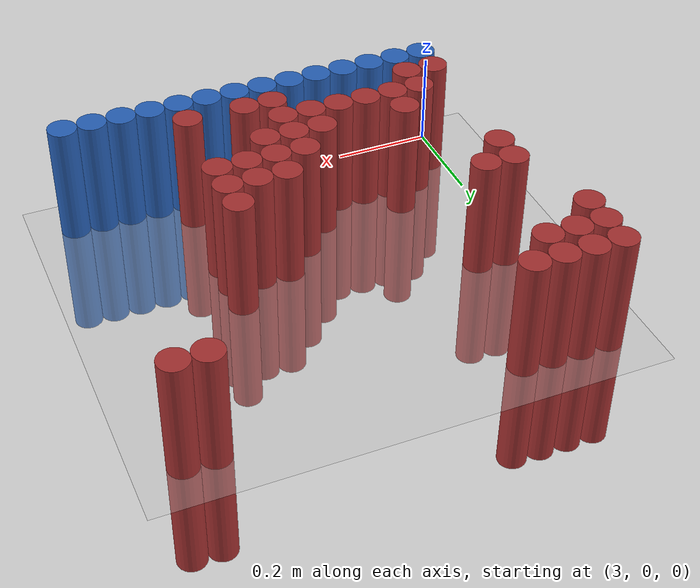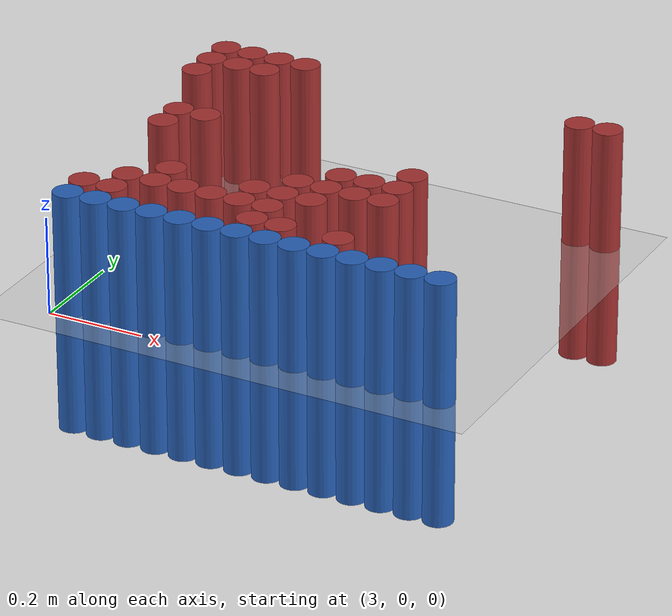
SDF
<sdf version="1.6">
 <world name="default">
  <model name="ground_plane">
   <static>1</static>
   <link name="link">
    <collision name="collision">
     <geometry><plane><normal>0 0 1</normal><size>100 100</size></plane></geometry>
     <surface><friction><ode><mu>100</mu><mu2>50</mu2></ode></friction></surface>
    </collision>
    <visual name="visual">
     <cast_shadows>0</cast_shadows>
     <geometry><plane><normal>0 0 1</normal><size>100 100</size></plane></geometry>
     <material>
      <script><uri>file://media/materials/scripts/gazebo.material</uri><name>Gazebo/Grey</name></script>
     </material>
    </visual>
   </link>
  </model>
  <model name="unit_cylinder_235">
   <static>1</static>
   <pose>2.970000 0.750000 0.000000 0.000000 0.000000 0.000000</pose>
   <link name="link">
    <inertial>
     <mass>1</mass>
     <inertia><ixx>0.145833</ixx><ixy>0</ixy><ixz>0</ixz><iyy>0.145833</iyy><iyz>0</iyz><izz>0.125</izz></inertia>
    </inertial>
    <collision name="collision">
     <geometry><cylinder><radius>0.030000</radius><length>0.5</length></cylinder></geometry>
    </collision>
    <visual name="visual">
     <geometry><cylinder><radius>0.030000</radius><length>0.5</length></cylinder></geometry>
     <material>
      <ambient>0.648000 0.192000 0.192000 1</ambient>
      <diffuse>0.648000 0.192000 0.192000 1</diffuse>
     </material>
     <material>
      <script><name>Gazebo/Grey</name><uri>file://media/materials/scripts/gazebo.material</uri></script>
     </material>
    </visual>
   </link>
  </model>
  <model name="unit_cylinder_236">
   <static>1</static>
   <pose>3.030000 0.750000 0.000000 0.000000 0.000000 0.000000</pose>
   <link name="link">
    <inertial>
     <mass>1</mass>
     <inertia><ixx>0.145833</ixx><ixy>0</ixy><ixz>0</ixz><iyy>0.145833</iyy><iyz>0</iyz><izz>0.125</izz></inertia>
    </inertial>
    <collision name="collision">
     <geometry><cylinder><radius>0.030000</radius><length>0.5</length></cylinder></geometry>
    </collision>
    <visual name="visual">
     <geometry><cylinder><radius>0.030000</radius><length>0.5</length></cylinder></geometry>
     <material>
      <ambient>0.648000 0.192000 0.192000 1</ambient>
      <diffuse>0.648000 0.192000 0.192000 1</diffuse>
     </material>
     <material>
      <script><name>Gazebo/Grey</name><uri>file://media/materials/scripts/gazebo.material</uri></script>
     </material>
    </visual>
   </link>
  </model>
  <model name="unit_cylinder_237">
   <static>1</static>
   <pose>3.090000 0.750000 0.000000 0.000000 0.000000 0.000000</pose>
   <link name="link">
    <inertial>
     <mass>1</mass>
     <inertia><ixx>0.145833</ixx><ixy>0</ixy><ixz>0</ixz><iyy>0.145833</iyy><iyz>0</iyz><izz>0.125</izz></inertia>
    </inertial>
    <collision name="collision">
     <geometry><cylinder><radius>0.030000</radius><length>0.5</length></cylinder></geometry>
    </collision>
    <visual name="visual">
     <geometry><cylinder><radius>0.030000</radius><length>0.5</length></cylinder></geometry>
     <material>
      <ambient>0.648000 0.192000 0.192000 1</ambient>
      <diffuse>0.648000 0.192000 0.192000 1</diffuse>
     </material>
     <material>
      <script><name>Gazebo/Grey</name><uri>file://media/materials/scripts/gazebo.material</uri></script>
     </material>
    </visual>
   </link>
  </model>
  <model name="unit_cylinder_238">
   <static>1</static>
   <pose>3.150000 0.750000 0.000000 0.000000 0.000000 0.000000</pose>
   <link name="link">
    <inertial>
     <mass>1</mass>
     <inertia><ixx>0.145833</ixx><ixy>0</ixy><ixz>0</ixz><iyy>0.145833</iyy><iyz>0</iyz><izz>0.125</izz></inertia>
    </inertial>
    <collision name="collision">
     <geometry><cylinder><radius>0.030000</radius><length>0.5</length></cylinder></geometry>
    </collision>
    <visual name="visual">
     <geometry><cylinder><radius>0.030000</radius><length>0.5</length></cylinder></geometry>
     <material>
      <ambient>0.648000 0.192000 0.192000 1</ambient>
      <diffuse>0.648000 0.192000 0.192000 1</diffuse>
     </material>
     <material>
      <script><name>Gazebo/Grey</name><uri>file://media/materials/scripts/gazebo.material</uri></script>
     </material>
    </visual>
   </link>
  </model>
  <model name="unit_cylinder_239">
   <static>1</static>
   <pose>3.750000 0.750000 0.000000 0.000000 0.000000 0.000000</pose>
   <link name="link">
    <inertial>
     <mass>1</mass>
     <inertia><ixx>0.145833</ixx><ixy>0</ixy><ixz>0</ixz><iyy>0.145833</iyy><iyz>0</iyz><izz>0.125</izz></inertia>
    </inertial>
    <collision name="collision">
     <geometry><cylinder><radius>0.030000</radius><length>0.5</length></cylinder></geometry>
    </collision>
    <visual name="visual">
     <geometry><cylinder><radius>0.030000</radius><length>0.5</length></cylinder></geometry>
     <material>
      <ambient>0.648000 0.192000 0.192000 1</ambient>
      <diffuse>0.648000 0.192000 0.192000 1</diffuse>
     </material>
     <material>
      <script><name>Gazebo/Grey</name><uri>file://media/materials/scripts/gazebo.material</uri></script>
     </material>
    </visual>
   </link>
  </model>
  <model name="unit_cylinder_240">
   <static>1</static>
   <pose>3.810000 0.750000 0.000000 0.000000 0.000000 0.000000</pose>
   <link name="link">
    <inertial>
     <mass>1</mass>
     <inertia><ixx>0.145833</ixx><ixy>0</ixy><ixz>0</ixz><iyy>0.145833</iyy><iyz>0</iyz><izz>0.125</izz></inertia>
    </inertial>
    <collision name="collision">
     <geometry><cylinder><radius>0.030000</radius><length>0.5</length></cylinder></geometry>
    </collision>
    <visual name="visual">
     <geometry><cylinder><radius>0.030000</radius><length>0.5</length></cylinder></geometry>
     <material>
      <ambient>0.648000 0.192000 0.192000 1</ambient>
      <diffuse>0.648000 0.192000 0.192000 1</diffuse>
     </material>
     <material>
      <script><name>Gazebo/Grey</name><uri>file://media/materials/scripts/gazebo.material</uri></script>
     </material>
    </visual>
   </link>
  </model>
  <model name="unit_cylinder_246">
   <static>1</static>
   <pose>2.970000 0.690000 0.000000 0.000000 0.000000 0.000000</pose>
   <link name="link">
    <inertial>
     <mass>1</mass>
     <inertia><ixx>0.145833</ixx><ixy>0</ixy><ixz>0</ixz><iyy>0.145833</iyy><iyz>0</iyz><izz>0.125</izz></inertia>
    </inertial>
    <collision name="collision">
     <geometry><cylinder><radius>0.030000</radius><length>0.5</length></cylinder></geometry>
    </collision>
    <visual name="visual">
     <geometry><cylinder><radius>0.030000</radius><length>0.5</length></cylinder></geometry>
     <material>
      <ambient>0.648000 0.192000 0.192000 1</ambient>
      <diffuse>0.648000 0.192000 0.192000 1</diffuse>
     </material>
     <material>
      <script><name>Gazebo/Grey</name><uri>file://media/materials/scripts/gazebo.material</uri></script>
     </material>
    </visual>
   </link>
  </model>
  <model name="unit_cylinder_247">
   <static>1</static>
   <pose>3.030000 0.690000 0.000000 0.000000 0.000000 0.000000</pose>
   <link name="link">
    <inertial>
     <mass>1</mass>
     <inertia><ixx>0.145833</ixx><ixy>0</ixy><ixz>0</ixz><iyy>0.145833</iyy><iyz>0</iyz><izz>0.125</izz></inertia>
    </inertial>
    <collision name="collision">
     <geometry><cylinder><radius>0.030000</radius><length>0.5</length></cylinder></geometry>
    </collision>
    <visual name="visual">
     <geometry><cylinder><radius>0.030000</radius><length>0.5</length></cylinder></geometry>
     <material>
      <ambient>0.648000 0.192000 0.192000 1</ambient>
      <diffuse>0.648000 0.192000 0.192000 1</diffuse>
     </material>
     <material>
      <script><name>Gazebo/Grey</name><uri>file://media/materials/scripts/gazebo.material</uri></script>
     </material>
    </visual>
   </link>
  </model>
  <model name="unit_cylinder_248">
   <static>1</static>
   <pose>3.090000 0.690000 0.000000 0.000000 0.000000 0.000000</pose>
   <link name="link">
    <inertial>
     <mass>1</mass>
     <inertia><ixx>0.145833</ixx><ixy>0</ixy><ixz>0</ixz><iyy>0.145833</iyy><iyz>0</iyz><izz>0.125</izz></inertia>
    </inertial>
    <collision name="collision">
     <geometry><cylinder><radius>0.030000</radius><length>0.5</length></cylinder></geometry>
    </collision>
    <visual name="visual">
     <geometry><cylinder><radius>0.030000</radius><length>0.5</length></cylinder></geometry>
     <material>
      <ambient>0.648000 0.192000 0.192000 1</ambient>
      <diffuse>0.648000 0.192000 0.192000 1</diffuse>
     </material>
     <material>
      <script><name>Gazebo/Grey</name><uri>file://media/materials/scripts/gazebo.material</uri></script>
     </material>
    </visual>
   </link>
  </model>
  <model name="unit_cylinder_251">
   <static>1</static>
   <pose>2.970000 0.630000 0.000000 0.000000 0.000000 0.000000</pose>
   <link name="link">
    <inertial>
     <mass>1</mass>
     <inertia><ixx>0.145833</ixx><ixy>0</ixy><ixz>0</ixz><iyy>0.145833</iyy><iyz>0</iyz><izz>0.125</izz></inertia>
    </inertial>
    <collision name="collision">
     <geometry><cylinder><radius>0.030000</radius><length>0.5</length></cylinder></geometry>
    </collision>
    <visual name="visual">
     <geometry><cylinder><radius>0.030000</radius><length>0.5</length></cylinder></geometry>
     <material>
      <ambient>0.648000 0.192000 0.192000 1</ambient>
      <diffuse>0.648000 0.192000 0.192000 1</diffuse>
     </material>
     <material>
      <script><name>Gazebo/Grey</name><uri>file://media/materials/scripts/gazebo.material</uri></script>
     </material>
    </visual>
   </link>
  </model>
  <model name="unit_cylinder_260">
   <static>1</static>
   <pose>3.030000 0.450000 0.000000 0.000000 0.000000 0.000000</pose>
   <link name="link">
    <inertial>
     <mass>1</mass>
     <inertia><ixx>0.145833</ixx><ixy>0</ixy><ixz>0</ixz><iyy>0.145833</iyy><iyz>0</iyz><izz>0.125</izz></inertia>
    </inertial>
    <collision name="collision">
     <geometry><cylinder><radius>0.030000</radius><length>0.5</length></cylinder></geometry>
    </collision>
    <visual name="visual">
     <geometry><cylinder><radius>0.030000</radius><length>0.5</length></cylinder></geometry>
     <material>
      <ambient>0.648000 0.192000 0.192000 1</ambient>
      <diffuse>0.648000 0.192000 0.192000 1</diffuse>
     </material>
     <material>
      <script><name>Gazebo/Grey</name><uri>file://media/materials/scripts/gazebo.material</uri></script>
     </material>
    </visual>
   </link>
  </model>
  <model name="unit_cylinder_261">
   <static>1</static>
   <pose>3.090000 0.450000 0.000000 0.000000 0.000000 0.000000</pose>
   <link name="link">
    <inertial>
     <mass>1</mass>
     <inertia><ixx>0.145833</ixx><ixy>0</ixy><ixz>0</ixz><iyy>0.145833</iyy><iyz>0</iyz><izz>0.125</izz></inertia>
    </inertial>
    <collision name="collision">
     <geometry><cylinder><radius>0.030000</radius><length>0.5</length></cylinder></geometry>
    </collision>
    <visual name="visual">
     <geometry><cylinder><radius>0.030000</radius><length>0.5</length></cylinder></geometry>
     <material>
      <ambient>0.648000 0.192000 0.192000 1</ambient>
      <diffuse>0.648000 0.192000 0.192000 1</diffuse>
     </material>
     <material>
      <script><name>Gazebo/Grey</name><uri>file://media/materials/scripts/gazebo.material</uri></script>
     </material>
    </visual>
   </link>
  </model>
  <model name="unit_cylinder_267">
   <static>1</static>
   <pose>3.030000 0.390000 0.000000 0.000000 0.000000 0.000000</pose>
   <link name="link">
    <inertial>
     <mass>1</mass>
     <inertia><ixx>0.145833</ixx><ixy>0</ixy><ixz>0</ixz><iyy>0.145833</iyy><iyz>0</iyz><izz>0.125</izz></inertia>
    </inertial>
    <collision name="collision">
     <geometry><cylinder><radius>0.030000</radius><length>0.5</length></cylinder></geometry>
    </collision>
    <visual name="visual">
     <geometry><cylinder><radius>0.030000</radius><length>0.5</length></cylinder></geometry>
     <material>
      <ambient>0.648000 0.192000 0.192000 1</ambient>
      <diffuse>0.648000 0.192000 0.192000 1</diffuse>
     </material>
     <material>
      <script><name>Gazebo/Grey</name><uri>file://media/materials/scripts/gazebo.material</uri></script>
     </material>
    </visual>
   </link>
  </model>
  <model name="unit_cylinder_268">
   <static>1</static>
   <pose>3.570000 0.390000 0.000000 0.000000 0.000000 0.000000</pose>
   <link name="link">
    <inertial>
     <mass>1</mass>
     <inertia><ixx>0.145833</ixx><ixy>0</ixy><ixz>0</ixz><iyy>0.145833</iyy><iyz>0</iyz><izz>0.125</izz></inertia>
    </inertial>
    <collision name="collision">
     <geometry><cylinder><radius>0.030000</radius><length>0.5</length></cylinder></geometry>
    </collision>
    <visual name="visual">
     <geometry><cylinder><radius>0.030000</radius><length>0.5</length></cylinder></geometry>
     <material>
      <ambient>0.648000 0.192000 0.192000 1</ambient>
      <diffuse>0.648000 0.192000 0.192000 1</diffuse>
     </material>
     <material>
      <script><name>Gazebo/Grey</name><uri>file://media/materials/scripts/gazebo.material</uri></script>
     </material>
    </visual>
   </link>
  </model>
  <model name="unit_cylinder_273">
   <static>1</static>
   <pose>3.450000 0.330000 0.000000 0.000000 0.000000 0.000000</pose>
   <link name="link">
    <inertial>
     <mass>1</mass>
     <inertia><ixx>0.145833</ixx><ixy>0</ixy><ixz>0</ixz><iyy>0.145833</iyy><iyz>0</iyz><izz>0.125</izz></inertia>
    </inertial>
    <collision name="collision">
     <geometry><cylinder><radius>0.030000</radius><length>0.5</length></cylinder></geometry>
    </collision>
    <visual name="visual">
     <geometry><cylinder><radius>0.030000</radius><length>0.5</length></cylinder></geometry>
     <material>
      <ambient>0.648000 0.192000 0.192000 1</ambient>
      <diffuse>0.648000 0.192000 0.192000 1</diffuse>
     </material>
     <material>
      <script><name>Gazebo/Grey</name><uri>file://media/materials/scripts/gazebo.material</uri></script>
     </material>
    </visual>
   </link>
  </model>
  <model name="unit_cylinder_274">
   <static>1</static>
   <pose>3.510000 0.330000 0.000000 0.000000 0.000000 0.000000</pose>
   <link name="link">
    <inertial>
     <mass>1</mass>
     <inertia><ixx>0.145833</ixx><ixy>0</ixy><ixz>0</ixz><iyy>0.145833</iyy><iyz>0</iyz><izz>0.125</izz></inertia>
    </inertial>
    <collision name="collision">
     <geometry><cylinder><radius>0.030000</radius><length>0.5</length></cylinder></geometry>
    </collision>
    <visual name="visual">
     <geometry><cylinder><radius>0.030000</radius><length>0.5</length></cylinder></geometry>
     <material>
      <ambient>0.648000 0.192000 0.192000 1</ambient>
      <diffuse>0.648000 0.192000 0.192000 1</diffuse>
     </material>
     <material>
      <script><name>Gazebo/Grey</name><uri>file://media/materials/scripts/gazebo.material</uri></script>
     </material>
    </visual>
   </link>
  </model>
  <model name="unit_cylinder_275">
   <static>1</static>
   <pose>3.570000 0.330000 0.000000 0.000000 0.000000 0.000000</pose>
   <link name="link">
    <inertial>
     <mass>1</mass>
     <inertia><ixx>0.145833</ixx><ixy>0</ixy><ixz>0</ixz><iyy>0.145833</iyy><iyz>0</iyz><izz>0.125</izz></inertia>
    </inertial>
    <collision name="collision">
     <geometry><cylinder><radius>0.030000</radius><length>0.5</length></cylinder></geometry>
    </collision>
    <visual name="visual">
     <geometry><cylinder><radius>0.030000</radius><length>0.5</length></cylinder></geometry>
     <material>
      <ambient>0.648000 0.192000 0.192000 1</ambient>
      <diffuse>0.648000 0.192000 0.192000 1</diffuse>
     </material>
     <material>
      <script><name>Gazebo/Grey</name><uri>file://media/materials/scripts/gazebo.material</uri></script>
     </material>
    </visual>
   </link>
  </model>
  <model name="unit_cylinder_280">
   <static>1</static>
   <pose>3.390000 0.270000 0.000000 0.000000 0.000000 0.000000</pose>
   <link name="link">
    <inertial>
     <mass>1</mass>
     <inertia><ixx>0.145833</ixx><ixy>0</ixy><ixz>0</ixz><iyy>0.145833</iyy><iyz>0</iyz><izz>0.125</izz></inertia>
    </inertial>
    <collision name="collision">
     <geometry><cylinder><radius>0.030000</radius><length>0.5</length></cylinder></geometry>
    </collision>
    <visual name="visual">
     <geometry><cylinder><radius>0.030000</radius><length>0.5</length></cylinder></geometry>
     <material>
      <ambient>0.648000 0.192000 0.192000 1</ambient>
      <diffuse>0.648000 0.192000 0.192000 1</diffuse>
     </material>
     <material>
      <script><name>Gazebo/Grey</name><uri>file://media/materials/scripts/gazebo.material</uri></script>
     </material>
    </visual>
   </link>
  </model>
  <model name="unit_cylinder_281">
   <static>1</static>
   <pose>3.450000 0.270000 0.000000 0.000000 0.000000 0.000000</pose>
   <link name="link">
    <inertial>
     <mass>1</mass>
     <inertia><ixx>0.145833</ixx><ixy>0</ixy><ixz>0</ixz><iyy>0.145833</iyy><iyz>0</iyz><izz>0.125</izz></inertia>
    </inertial>
    <collision name="collision">
     <geometry><cylinder><radius>0.030000</radius><length>0.5</length></cylinder></geometry>
    </collision>
    <visual name="visual">
     <geometry><cylinder><radius>0.030000</radius><length>0.5</length></cylinder></geometry>
     <material>
      <ambient>0.648000 0.192000 0.192000 1</ambient>
      <diffuse>0.648000 0.192000 0.192000 1</diffuse>
     </material>
     <material>
      <script><name>Gazebo/Grey</name><uri>file://media/materials/scripts/gazebo.material</uri></script>
     </material>
    </visual>
   </link>
  </model>
  <model name="unit_cylinder_282">
   <static>1</static>
   <pose>3.510000 0.270000 0.000000 0.000000 0.000000 0.000000</pose>
   <link name="link">
    <inertial>
     <mass>1</mass>
     <inertia><ixx>0.145833</ixx><ixy>0</ixy><ixz>0</ixz><iyy>0.145833</iyy><iyz>0</iyz><izz>0.125</izz></inertia>
    </inertial>
    <collision name="collision">
     <geometry><cylinder><radius>0.030000</radius><length>0.5</length></cylinder></geometry>
    </collision>
    <visual name="visual">
     <geometry><cylinder><radius>0.030000</radius><length>0.5</length></cylinder></geometry>
     <material>
      <ambient>0.648000 0.192000 0.192000 1</ambient>
      <diffuse>0.648000 0.192000 0.192000 1</diffuse>
     </material>
     <material>
      <script><name>Gazebo/Grey</name><uri>file://media/materials/scripts/gazebo.material</uri></script>
     </material>
    </visual>
   </link>
  </model>
  <model name="unit_cylinder_283">
   <static>1</static>
   <pose>3.570000 0.270000 0.000000 0.000000 0.000000 0.000000</pose>
   <link name="link">
    <inertial>
     <mass>1</mass>
     <inertia><ixx>0.145833</ixx><ixy>0</ixy><ixz>0</ixz><iyy>0.145833</iyy><iyz>0</iyz><izz>0.125</izz></inertia>
    </inertial>
    <collision name="collision">
     <geometry><cylinder><radius>0.030000</radius><length>0.5</length></cylinder></geometry>
    </collision>
    <visual name="visual">
     <geometry><cylinder><radius>0.030000</radius><length>0.5</length></cylinder></geometry>
     <material>
      <ambient>0.648000 0.192000 0.192000 1</ambient>
      <diffuse>0.648000 0.192000 0.192000 1</diffuse>
     </material>
     <material>
      <script><name>Gazebo/Grey</name><uri>file://media/materials/scripts/gazebo.material</uri></script>
     </material>
    </visual>
   </link>
  </model>
  <model name="unit_cylinder_288">
   <static>1</static>
   <pose>3.150000 0.210000 0.000000 0.000000 0.000000 0.000000</pose>
   <link name="link">
    <inertial>
     <mass>1</mass>
     <inertia><ixx>0.145833</ixx><ixy>0</ixy><ixz>0</ixz><iyy>0.145833</iyy><iyz>0</iyz><izz>0.125</izz></inertia>
    </inertial>
    <collision name="collision">
     <geometry><cylinder><radius>0.030000</radius><length>0.5</length></cylinder></geometry>
    </collision>
    <visual name="visual">
     <geometry><cylinder><radius>0.030000</radius><length>0.5</length></cylinder></geometry>
     <material>
      <ambient>0.648000 0.192000 0.192000 1</ambient>
      <diffuse>0.648000 0.192000 0.192000 1</diffuse>
     </material>
     <material>
      <script><name>Gazebo/Grey</name><uri>file://media/materials/scripts/gazebo.material</uri></script>
     </material>
    </visual>
   </link>
  </model>
  <model name="unit_cylinder_289">
   <static>1</static>
   <pose>3.330000 0.210000 0.000000 0.000000 0.000000 0.000000</pose>
   <link name="link">
    <inertial>
     <mass>1</mass>
     <inertia><ixx>0.145833</ixx><ixy>0</ixy><ixz>0</ixz><iyy>0.145833</iyy><iyz>0</iyz><izz>0.125</izz></inertia>
    </inertial>
    <collision name="collision">
     <geometry><cylinder><radius>0.030000</radius><length>0.5</length></cylinder></geometry>
    </collision>
    <visual name="visual">
     <geometry><cylinder><radius>0.030000</radius><length>0.5</length></cylinder></geometry>
     <material>
      <ambient>0.648000 0.192000 0.192000 1</ambient>
      <diffuse>0.648000 0.192000 0.192000 1</diffuse>
     </material>
     <material>
      <script><name>Gazebo/Grey</name><uri>file://media/materials/scripts/gazebo.material</uri></script>
     </material>
    </visual>
   </link>
  </model>
  <model name="unit_cylinder_290">
   <static>1</static>
   <pose>3.390000 0.210000 0.000000 0.000000 0.000000 0.000000</pose>
   <link name="link">
    <inertial>
     <mass>1</mass>
     <inertia><ixx>0.145833</ixx><ixy>0</ixy><ixz>0</ixz><iyy>0.145833</iyy><iyz>0</iyz><izz>0.125</izz></inertia>
    </inertial>
    <collision name="collision">
     <geometry><cylinder><radius>0.030000</radius><length>0.5</length></cylinder></geometry>
    </collision>
    <visual name="visual">
     <geometry><cylinder><radius>0.030000</radius><length>0.5</length></cylinder></geometry>
     <material>
      <ambient>0.648000 0.192000 0.192000 1</ambient>
      <diffuse>0.648000 0.192000 0.192000 1</diffuse>
     </material>
     <material>
      <script><name>Gazebo/Grey</name><uri>file://media/materials/scripts/gazebo.material</uri></script>
     </material>
    </visual>
   </link>
  </model>
  <model name="unit_cylinder_291">
   <static>1</static>
   <pose>3.450000 0.210000 0.000000 0.000000 0.000000 0.000000</pose>
   <link name="link">
    <inertial>
     <mass>1</mass>
     <inertia><ixx>0.145833</ixx><ixy>0</ixy><ixz>0</ixz><iyy>0.145833</iyy><iyz>0</iyz><izz>0.125</izz></inertia>
    </inertial>
    <collision name="collision">
     <geometry><cylinder><radius>0.030000</radius><length>0.5</length></cylinder></geometry>
    </collision>
    <visual name="visual">
     <geometry><cylinder><radius>0.030000</radius><length>0.5</length></cylinder></geometry>
     <material>
      <ambient>0.648000 0.192000 0.192000 1</ambient>
      <diffuse>0.648000 0.192000 0.192000 1</diffuse>
     </material>
     <material>
      <script><name>Gazebo/Grey</name><uri>file://media/materials/scripts/gazebo.material</uri></script>
     </material>
    </visual>
   </link>
  </model>
  <model name="unit_cylinder_298">
   <static>1</static>
   <pose>3.090000 0.150000 0.000000 0.000000 0.000000 0.000000</pose>
   <link name="link">
    <inertial>
     <mass>1</mass>
     <inertia><ixx>0.145833</ixx><ixy>0</ixy><ixz>0</ixz><iyy>0.145833</iyy><iyz>0</iyz><izz>0.125</izz></inertia>
    </inertial>
    <collision name="collision">
     <geometry><cylinder><radius>0.030000</radius><length>0.5</length></cylinder></geometry>
    </collision>
    <visual name="visual">
     <geometry><cylinder><radius>0.030000</radius><length>0.5</length></cylinder></geometry>
     <material>
      <ambient>0.648000 0.192000 0.192000 1</ambient>
      <diffuse>0.648000 0.192000 0.192000 1</diffuse>
     </material>
     <material>
      <script><name>Gazebo/Grey</name><uri>file://media/materials/scripts/gazebo.material</uri></script>
     </material>
    </visual>
   </link>
  </model>
  <model name="unit_cylinder_299">
   <static>1</static>
   <pose>3.150000 0.150000 0.000000 0.000000 0.000000 0.000000</pose>
   <link name="link">
    <inertial>
     <mass>1</mass>
     <inertia><ixx>0.145833</ixx><ixy>0</ixy><ixz>0</ixz><iyy>0.145833</iyy><iyz>0</iyz><izz>0.125</izz></inertia>
    </inertial>
    <collision name="collision">
     <geometry><cylinder><radius>0.030000</radius><length>0.5</length></cylinder></geometry>
    </collision>
    <visual name="visual">
     <geometry><cylinder><radius>0.030000</radius><length>0.5</length></cylinder></geometry>
     <material>
      <ambient>0.648000 0.192000 0.192000 1</ambient>
      <diffuse>0.648000 0.192000 0.192000 1</diffuse>
     </material>
     <material>
      <script><name>Gazebo/Grey</name><uri>file://media/materials/scripts/gazebo.material</uri></script>
     </material>
    </visual>
   </link>
  </model>
  <model name="unit_cylinder_300">
   <static>1</static>
   <pose>3.210000 0.150000 0.000000 0.000000 0.000000 0.000000</pose>
   <link name="link">
    <inertial>
     <mass>1</mass>
     <inertia><ixx>0.145833</ixx><ixy>0</ixy><ixz>0</ixz><iyy>0.145833</iyy><iyz>0</iyz><izz>0.125</izz></inertia>
    </inertial>
    <collision name="collision">
     <geometry><cylinder><radius>0.030000</radius><length>0.5</length></cylinder></geometry>
    </collision>
    <visual name="visual">
     <geometry><cylinder><radius>0.030000</radius><length>0.5</length></cylinder></geometry>
     <material>
      <ambient>0.648000 0.192000 0.192000 1</ambient>
      <diffuse>0.648000 0.192000 0.192000 1</diffuse>
     </material>
     <material>
      <script><name>Gazebo/Grey</name><uri>file://media/materials/scripts/gazebo.material</uri></script>
     </material>
    </visual>
   </link>
  </model>
  <model name="unit_cylinder_301">
   <static>1</static>
   <pose>3.270000 0.150000 0.000000 0.000000 0.000000 0.000000</pose>
   <link name="link">
    <inertial>
     <mass>1</mass>
     <inertia><ixx>0.145833</ixx><ixy>0</ixy><ixz>0</ixz><iyy>0.145833</iyy><iyz>0</iyz><izz>0.125</izz></inertia>
    </inertial>
    <collision name="collision">
     <geometry><cylinder><radius>0.030000</radius><length>0.5</length></cylinder></geometry>
    </collision>
    <visual name="visual">
     <geometry><cylinder><radius>0.030000</radius><length>0.5</length></cylinder></geometry>
     <material>
      <ambient>0.648000 0.192000 0.192000 1</ambient>
      <diffuse>0.648000 0.192000 0.192000 1</diffuse>
     </material>
     <material>
      <script><name>Gazebo/Grey</name><uri>file://media/materials/scripts/gazebo.material</uri></script>
     </material>
    </visual>
   </link>
  </model>
  <model name="unit_cylinder_302">
   <static>1</static>
   <pose>3.330000 0.150000 0.000000 0.000000 0.000000 0.000000</pose>
   <link name="link">
    <inertial>
     <mass>1</mass>
     <inertia><ixx>0.145833</ixx><ixy>0</ixy><ixz>0</ixz><iyy>0.145833</iyy><iyz>0</iyz><izz>0.125</izz></inertia>
    </inertial>
    <collision name="collision">
     <geometry><cylinder><radius>0.030000</radius><length>0.5</length></cylinder></geometry>
    </collision>
    <visual name="visual">
     <geometry><cylinder><radius>0.030000</radius><length>0.5</length></cylinder></geometry>
     <material>
      <ambient>0.648000 0.192000 0.192000 1</ambient>
      <diffuse>0.648000 0.192000 0.192000 1</diffuse>
     </material>
     <material>
      <script><name>Gazebo/Grey</name><uri>file://media/materials/scripts/gazebo.material</uri></script>
     </material>
    </visual>
   </link>
  </model>
  <model name="unit_cylinder_303">
   <static>1</static>
   <pose>3.390000 0.150000 0.000000 0.000000 0.000000 0.000000</pose>
   <link name="link">
    <inertial>
     <mass>1</mass>
     <inertia><ixx>0.145833</ixx><ixy>0</ixy><ixz>0</ixz><iyy>0.145833</iyy><iyz>0</iyz><izz>0.125</izz></inertia>
    </inertial>
    <collision name="collision">
     <geometry><cylinder><radius>0.030000</radius><length>0.5</length></cylinder></geometry>
    </collision>
    <visual name="visual">
     <geometry><cylinder><radius>0.030000</radius><length>0.5</length></cylinder></geometry>
     <material>
      <ambient>0.648000 0.192000 0.192000 1</ambient>
      <diffuse>0.648000 0.192000 0.192000 1</diffuse>
     </material>
     <material>
      <script><name>Gazebo/Grey</name><uri>file://media/materials/scripts/gazebo.material</uri></script>
     </material>
    </visual>
   </link>
  </model>
  <model name="unit_cylinder_314">
   <static>1</static>
   <pose>3.030000 0.090000 0.000000 0.000000 0.000000 0.000000</pose>
   <link name="link">
    <inertial>
     <mass>1</mass>
     <inertia><ixx>0.145833</ixx><ixy>0</ixy><ixz>0</ixz><iyy>0.145833</iyy><iyz>0</iyz><izz>0.125</izz></inertia>
    </inertial>
    <collision name="collision">
     <geometry><cylinder><radius>0.030000</radius><length>0.5</length></cylinder></geometry>
    </collision>
    <visual name="visual">
     <geometry><cylinder><radius>0.030000</radius><length>0.5</length></cylinder></geometry>
     <material>
      <ambient>0.648000 0.192000 0.192000 1</ambient>
      <diffuse>0.648000 0.192000 0.192000 1</diffuse>
     </material>
     <material>
      <script><name>Gazebo/Grey</name><uri>file://media/materials/scripts/gazebo.material</uri></script>
     </material>
    </visual>
   </link>
  </model>
  <model name="unit_cylinder_315">
   <static>1</static>
   <pose>3.090000 0.090000 0.000000 0.000000 0.000000 0.000000</pose>
   <link name="link">
    <inertial>
     <mass>1</mass>
     <inertia><ixx>0.145833</ixx><ixy>0</ixy><ixz>0</ixz><iyy>0.145833</iyy><iyz>0</iyz><izz>0.125</izz></inertia>
    </inertial>
    <collision name="collision">
     <geometry><cylinder><radius>0.030000</radius><length>0.5</length></cylinder></geometry>
    </collision>
    <visual name="visual">
     <geometry><cylinder><radius>0.030000</radius><length>0.5</length></cylinder></geometry>
     <material>
      <ambient>0.648000 0.192000 0.192000 1</ambient>
      <diffuse>0.648000 0.192000 0.192000 1</diffuse>
     </material>
     <material>
      <script><name>Gazebo/Grey</name><uri>file://media/materials/scripts/gazebo.material</uri></script>
     </material>
    </visual>
   </link>
  </model>
  <model name="unit_cylinder_316">
   <static>1</static>
   <pose>3.390000 0.090000 0.000000 0.000000 0.000000 0.000000</pose>
   <link name="link">
    <inertial>
     <mass>1</mass>
     <inertia><ixx>0.145833</ixx><ixy>0</ixy><ixz>0</ixz><iyy>0.145833</iyy><iyz>0</iyz><izz>0.125</izz></inertia>
    </inertial>
    <collision name="collision">
     <geometry><cylinder><radius>0.030000</radius><length>0.5</length></cylinder></geometry>
    </collision>
    <visual name="visual">
     <geometry><cylinder><radius>0.030000</radius><length>0.5</length></cylinder></geometry>
     <material>
      <ambient>0.648000 0.192000 0.192000 1</ambient>
      <diffuse>0.648000 0.192000 0.192000 1</diffuse>
     </material>
     <material>
      <script><name>Gazebo/Grey</name><uri>file://media/materials/scripts/gazebo.material</uri></script>
     </material>
    </visual>
   </link>
  </model>
  <model name="unit_cylinder_317">
   <static>1</static>
   <pose>3.450000 0.090000 0.000000 0.000000 0.000000 0.000000</pose>
   <link name="link">
    <inertial>
     <mass>1</mass>
     <inertia><ixx>0.145833</ixx><ixy>0</ixy><ixz>0</ixz><iyy>0.145833</iyy><iyz>0</iyz><izz>0.125</izz></inertia>
    </inertial>
    <collision name="collision">
     <geometry><cylinder><radius>0.030000</radius><length>0.5</length></cylinder></geometry>
    </collision>
    <visual name="visual">
     <geometry><cylinder><radius>0.030000</radius><length>0.5</length></cylinder></geometry>
     <material>
      <ambient>0.648000 0.192000 0.192000 1</ambient>
      <diffuse>0.648000 0.192000 0.192000 1</diffuse>
     </material>
     <material>
      <script><name>Gazebo/Grey</name><uri>file://media/materials/scripts/gazebo.material</uri></script>
     </material>
    </visual>
   </link>
  </model>
  <model name="unit_cylinder_318">
   <static>1</static>
   <pose>3.570000 0.090000 0.000000 0.000000 0.000000 0.000000</pose>
   <link name="link">
    <inertial>
     <mass>1</mass>
     <inertia><ixx>0.145833</ixx><ixy>0</ixy><ixz>0</ixz><iyy>0.145833</iyy><iyz>0</iyz><izz>0.125</izz></inertia>
    </inertial>
    <collision name="collision">
     <geometry><cylinder><radius>0.030000</radius><length>0.5</length></cylinder></geometry>
    </collision>
    <visual name="visual">
     <geometry><cylinder><radius>0.030000</radius><length>0.5</length></cylinder></geometry>
     <material>
      <ambient>0.648000 0.192000 0.192000 1</ambient>
      <diffuse>0.648000 0.192000 0.192000 1</diffuse>
     </material>
     <material>
      <script><name>Gazebo/Grey</name><uri>file://media/materials/scripts/gazebo.material</uri></script>
     </material>
    </visual>
   </link>
  </model>
  <model name="unit_cylinder_335">
   <static>1</static>
   <pose>3.030000 0.030000 0.000000 0.000000 0.000000 0.000000</pose>
   <link name="link">
    <inertial>
     <mass>1</mass>
     <inertia><ixx>0.145833</ixx><ixy>0</ixy><ixz>0</ixz><iyy>0.145833</iyy><iyz>0</iyz><izz>0.125</izz></inertia>
    </inertial>
    <collision name="collision">
     <geometry><cylinder><radius>0.030000</radius><length>0.5</length></cylinder></geometry>
    </collision>
    <visual name="visual">
     <geometry><cylinder><radius>0.030000</radius><length>0.5</length></cylinder></geometry>
     <material>
      <ambient>0.152000 0.379000 0.720000 1</ambient>
      <diffuse>0.152000 0.379000 0.720000 1</diffuse>
     </material>
     <material>
      <script><name>Gazebo/Grey</name><uri>file://media/materials/scripts/gazebo.material</uri></script>
     </material>
    </visual>
   </link>
  </model>
  <model name="unit_cylinder_336">
   <static>1</static>
   <pose>3.090000 0.030000 0.000000 0.000000 0.000000 0.000000</pose>
   <link name="link">
    <inertial>
     <mass>1</mass>
     <inertia><ixx>0.145833</ixx><ixy>0</ixy><ixz>0</ixz><iyy>0.145833</iyy><iyz>0</iyz><izz>0.125</izz></inertia>
    </inertial>
    <collision name="collision">
     <geometry><cylinder><radius>0.030000</radius><length>0.5</length></cylinder></geometry>
    </collision>
    <visual name="visual">
     <geometry><cylinder><radius>0.030000</radius><length>0.5</length></cylinder></geometry>
     <material>
      <ambient>0.152000 0.379000 0.720000 1</ambient>
      <diffuse>0.152000 0.379000 0.720000 1</diffuse>
     </material>
     <material>
      <script><name>Gazebo/Grey</name><uri>file://media/materials/scripts/gazebo.material</uri></script>
     </material>
    </visual>
   </link>
  </model>
  <model name="unit_cylinder_337">
   <static>1</static>
   <pose>3.150000 0.030000 0.000000 0.000000 0.000000 0.000000</pose>
   <link name="link">
    <inertial>
     <mass>1</mass>
     <inertia><ixx>0.145833</ixx><ixy>0</ixy><ixz>0</ixz><iyy>0.145833</iyy><iyz>0</iyz><izz>0.125</izz></inertia>
    </inertial>
    <collision name="collision">
     <geometry><cylinder><radius>0.030000</radius><length>0.5</length></cylinder></geometry>
    </collision>
    <visual name="visual">
     <geometry><cylinder><radius>0.030000</radius><length>0.5</length></cylinder></geometry>
     <material>
      <ambient>0.152000 0.379000 0.720000 1</ambient>
      <diffuse>0.152000 0.379000 0.720000 1</diffuse>
     </material>
     <material>
      <script><name>Gazebo/Grey</name><uri>file://media/materials/scripts/gazebo.material</uri></script>
     </material>
    </visual>
   </link>
  </model>
  <model name="unit_cylinder_338">
   <static>1</static>
   <pose>3.210000 0.030000 0.000000 0.000000 0.000000 0.000000</pose>
   <link name="link">
    <inertial>
     <mass>1</mass>
     <inertia><ixx>0.145833</ixx><ixy>0</ixy><ixz>0</ixz><iyy>0.145833</iyy><iyz>0</iyz><izz>0.125</izz></inertia>
    </inertial>
    <collision name="collision">
     <geometry><cylinder><radius>0.030000</radius><length>0.5</length></cylinder></geometry>
    </collision>
    <visual name="visual">
     <geometry><cylinder><radius>0.030000</radius><length>0.5</length></cylinder></geometry>
     <material>
      <ambient>0.152000 0.379000 0.720000 1</ambient>
      <diffuse>0.152000 0.379000 0.720000 1</diffuse>
     </material>
     <material>
      <script><name>Gazebo/Grey</name><uri>file://media/materials/scripts/gazebo.material</uri></script>
     </material>
    </visual>
   </link>
  </model>
  <model name="unit_cylinder_339">
   <static>1</static>
   <pose>3.270000 0.030000 0.000000 0.000000 0.000000 0.000000</pose>
   <link name="link">
    <inertial>
     <mass>1</mass>
     <inertia><ixx>0.145833</ixx><ixy>0</ixy><ixz>0</ixz><iyy>0.145833</iyy><iyz>0</iyz><izz>0.125</izz></inertia>
    </inertial>
    <collision name="collision">
     <geometry><cylinder><radius>0.030000</radius><length>0.5</length></cylinder></geometry>
    </collision>
    <visual name="visual">
     <geometry><cylinder><radius>0.030000</radius><length>0.5</length></cylinder></geometry>
     <material>
      <ambient>0.152000 0.379000 0.720000 1</ambient>
      <diffuse>0.152000 0.379000 0.720000 1</diffuse>
     </material>
     <material>
      <script><name>Gazebo/Grey</name><uri>file://media/materials/scripts/gazebo.material</uri></script>
     </material>
    </visual>
   </link>
  </model>
  <model name="unit_cylinder_340">
   <static>1</static>
   <pose>3.330000 0.030000 0.000000 0.000000 0.000000 0.000000</pose>
   <link name="link">
    <inertial>
     <mass>1</mass>
     <inertia><ixx>0.145833</ixx><ixy>0</ixy><ixz>0</ixz><iyy>0.145833</iyy><iyz>0</iyz><izz>0.125</izz></inertia>
    </inertial>
    <collision name="collision">
     <geometry><cylinder><radius>0.030000</radius><length>0.5</length></cylinder></geometry>
    </collision>
    <visual name="visual">
     <geometry><cylinder><radius>0.030000</radius><length>0.5</length></cylinder></geometry>
     <material>
      <ambient>0.152000 0.379000 0.720000 1</ambient>
      <diffuse>0.152000 0.379000 0.720000 1</diffuse>
     </material>
     <material>
      <script><name>Gazebo/Grey</name><uri>file://media/materials/scripts/gazebo.material</uri></script>
     </material>
    </visual>
   </link>
  </model>
  <model name="unit_cylinder_341">
   <static>1</static>
   <pose>3.390000 0.030000 0.000000 0.000000 0.000000 0.000000</pose>
   <link name="link">
    <inertial>
     <mass>1</mass>
     <inertia><ixx>0.145833</ixx><ixy>0</ixy><ixz>0</ixz><iyy>0.145833</iyy><iyz>0</iyz><izz>0.125</izz></inertia>
    </inertial>
    <collision name="collision">
     <geometry><cylinder><radius>0.030000</radius><length>0.5</length></cylinder></geometry>
    </collision>
    <visual name="visual">
     <geometry><cylinder><radius>0.030000</radius><length>0.5</length></cylinder></geometry>
     <material>
      <ambient>0.152000 0.379000 0.720000 1</ambient>
      <diffuse>0.152000 0.379000 0.720000 1</diffuse>
     </material>
     <material>
      <script><name>Gazebo/Grey</name><uri>file://media/materials/scripts/gazebo.material</uri></script>
     </material>
    </visual>
   </link>
  </model>
  <model name="unit_cylinder_342">
   <static>1</static>
   <pose>3.450000 0.030000 0.000000 0.000000 0.000000 0.000000</pose>
   <link name="link">
    <inertial>
     <mass>1</mass>
     <inertia><ixx>0.145833</ixx><ixy>0</ixy><ixz>0</ixz><iyy>0.145833</iyy><iyz>0</iyz><izz>0.125</izz></inertia>
    </inertial>
    <collision name="collision">
     <geometry><cylinder><radius>0.030000</radius><length>0.5</length></cylinder></geometry>
    </collision>
    <visual name="visual">
     <geometry><cylinder><radius>0.030000</radius><length>0.5</length></cylinder></geometry>
     <material>
      <ambient>0.152000 0.379000 0.720000 1</ambient>
      <diffuse>0.152000 0.379000 0.720000 1</diffuse>
     </material>
     <material>
      <script><name>Gazebo/Grey</name><uri>file://media/materials/scripts/gazebo.material</uri></script>
     </material>
    </visual>
   </link>
  </model>
  <model name="unit_cylinder_343">
   <static>1</static>
   <pose>3.510000 0.030000 0.000000 0.000000 0.000000 0.000000</pose>
   <link name="link">
    <inertial>
     <mass>1</mass>
     <inertia><ixx>0.145833</ixx><ixy>0</ixy><ixz>0</ixz><iyy>0.145833</iyy><iyz>0</iyz><izz>0.125</izz></inertia>
    </inertial>
    <collision name="collision">
     <geometry><cylinder><radius>0.030000</radius><length>0.5</length></cylinder></geometry>
    </collision>
    <visual name="visual">
     <geometry><cylinder><radius>0.030000</radius><length>0.5</length></cylinder></geometry>
     <material>
      <ambient>0.152000 0.379000 0.720000 1</ambient>
      <diffuse>0.152000 0.379000 0.720000 1</diffuse>
     </material>
     <material>
      <script><name>Gazebo/Grey</name><uri>file://media/materials/scripts/gazebo.material</uri></script>
     </material>
    </visual>
   </link>
  </model>
  <model name="unit_cylinder_344">
   <static>1</static>
   <pose>3.570000 0.030000 0.000000 0.000000 0.000000 0.000000</pose>
   <link name="link">
    <inertial>
     <mass>1</mass>
     <inertia><ixx>0.145833</ixx><ixy>0</ixy><ixz>0</ixz><iyy>0.145833</iyy><iyz>0</iyz><izz>0.125</izz></inertia>
    </inertial>
    <collision name="collision">
     <geometry><cylinder><radius>0.030000</radius><length>0.5</length></cylinder></geometry>
    </collision>
    <visual name="visual">
     <geometry><cylinder><radius>0.030000</radius><length>0.5</length></cylinder></geometry>
     <material>
      <ambient>0.152000 0.379000 0.720000 1</ambient>
      <diffuse>0.152000 0.379000 0.720000 1</diffuse>
     </material>
     <material>
      <script><name>Gazebo/Grey</name><uri>file://media/materials/scripts/gazebo.material</uri></script>
     </material>
    </visual>
   </link>
  </model>
  <model name="unit_cylinder_345">
   <static>1</static>
   <pose>3.630000 0.030000 0.000000 0.000000 0.000000 0.000000</pose>
   <link name="link">
    <inertial>
     <mass>1</mass>
     <inertia><ixx>0.145833</ixx><ixy>0</ixy><ixz>0</ixz><iyy>0.145833</iyy><iyz>0</iyz><izz>0.125</izz></inertia>
    </inertial>
    <collision name="collision">
     <geometry><cylinder><radius>0.030000</radius><length>0.5</length></cylinder></geometry>
    </collision>
    <visual name="visual">
     <geometry><cylinder><radius>0.030000</radius><length>0.5</length></cylinder></geometry>
     <material>
      <ambient>0.152000 0.379000 0.720000 1</ambient>
      <diffuse>0.152000 0.379000 0.720000 1</diffuse>
     </material>
     <material>
      <script><name>Gazebo/Grey</name><uri>file://media/materials/scripts/gazebo.material</uri></script>
     </material>
    </visual>
   </link>
  </model>
  <model name="unit_cylinder_346">
   <static>1</static>
   <pose>3.690000 0.030000 0.000000 0.000000 0.000000 0.000000</pose>
   <link name="link">
    <inertial>
     <mass>1</mass>
     <inertia><ixx>0.145833</ixx><ixy>0</ixy><ixz>0</ixz><iyy>0.145833</iyy><iyz>0</iyz><izz>0.125</izz></inertia>
    </inertial>
    <collision name="collision">
     <geometry><cylinder><radius>0.030000</radius><length>0.5</length></cylinder></geometry>
    </collision>
    <visual name="visual">
     <geometry><cylinder><radius>0.030000</radius><length>0.5</length></cylinder></geometry>
     <material>
      <ambient>0.152000 0.379000 0.720000 1</ambient>
      <diffuse>0.152000 0.379000 0.720000 1</diffuse>
     </material>
     <material>
      <script><name>Gazebo/Grey</name><uri>file://media/materials/scripts/gazebo.material</uri></script>
     </material>
    </visual>
   </link>
  </model>
  <model name="unit_cylinder_347">
   <static>1</static>
   <pose>3.750000 0.030000 0.000000 0.000000 0.000000 0.000000</pose>
   <link name="link">
    <inertial>
     <mass>1</mass>
     <inertia><ixx>0.145833</ixx><ixy>0</ixy><ixz>0</ixz><iyy>0.145833</iyy><iyz>0</iyz><izz>0.125</izz></inertia>
    </inertial>
    <collision name="collision">
     <geometry><cylinder><radius>0.030000</radius><length>0.5</length></cylinder></geometry>
    </collision>
    <visual name="visual">
     <geometry><cylinder><radius>0.030000</radius><length>0.5</length></cylinder></geometry>
     <material>
      <ambient>0.152000 0.379000 0.720000 1</ambient>
      <diffuse>0.152000 0.379000 0.720000 1</diffuse>
     </material>
     <material>
      <script><name>Gazebo/Grey</name><uri>file://media/materials/scripts/gazebo.material</uri></script>
     </material>
    </visual>
   </link>
  </model>
  <model name="unit_cylinder_348">
   <static>1</static>
   <pose>3.810000 0.030000 0.000000 0.000000 0.000000 0.000000</pose>
   <link name="link">
    <inertial>
     <mass>1</mass>
     <inertia><ixx>0.145833</ixx><ixy>0</ixy><ixz>0</ixz><iyy>0.145833</iyy><iyz>0</iyz><izz>0.125</izz></inertia>
    </inertial>
    <collision name="collision">
     <geometry><cylinder><radius>0.030000</radius><length>0.5</length></cylinder></geometry>
    </collision>
    <visual name="visual">
     <geometry><cylinder><radius>0.030000</radius><length>0.5</length></cylinder></geometry>
     <material>
      <ambient>0.152000 0.379000 0.720000 1</ambient>
      <diffuse>0.152000 0.379000 0.720000 1</diffuse>
     </material>
     <material>
      <script><name>Gazebo/Grey</name><uri>file://media/materials/scripts/gazebo.material</uri></script>
     </material>
    </visual>
   </link>
  </model>
 </world>
</sdf>
